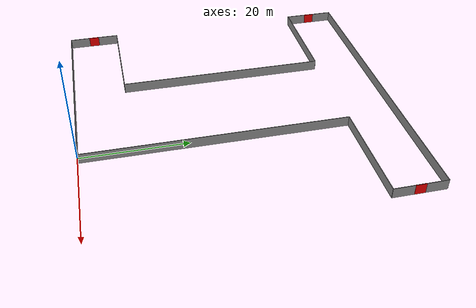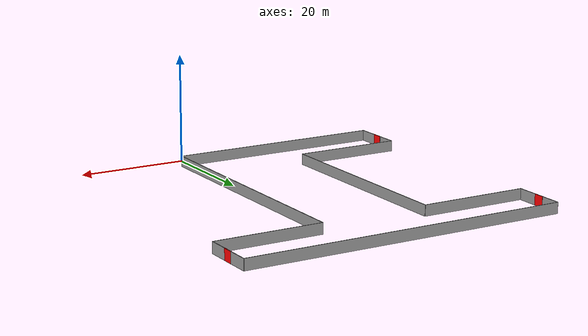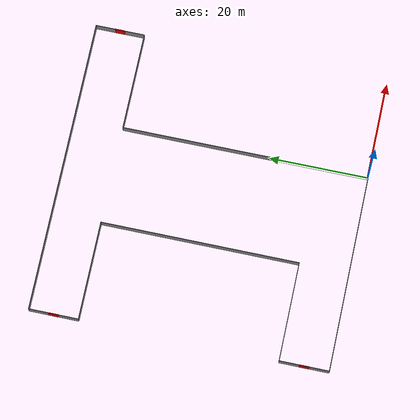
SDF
<?xml version='1.0'?>
<sdf version='1.6'>
  <model name='basic'>
    <pose frame=''>0 0 0 0 0 0</pose>
    <static>1</static>

    <link name='Wall_1'>
      <collision name='Wall_1_Collision'>
        <geometry>
          <box>
            <size>40 0.1 2</size>
          </box>
        </geometry>
        <pose frame=''>0 0 0 0 0 0</pose>
      </collision>
      <visual name='Wall_1_Visual'>
        <pose frame=''>0 0 0 0 0 0</pose>
        <geometry>
          <box>
            <size>40 0.1 2</size>
          </box>
        </geometry>
        <material>
          <script>
            <uri>file://media/materials/scripts/gazebo.material</uri>
            <name>Gazebo/Grey</name>
          </script>
          <ambient>1 1 1 1</ambient>
        </material>
        <meta>
          <layer>0</layer>
        </meta>
      </visual>
      <pose frame=''>-20 0 0 0 0 0</pose>
    </link>

    <link name='Wall_2'>
      <collision name='Wall_2_Collision'>
        <geometry>
          <box>
            <size>0.1 50 2</size>
          </box>
        </geometry>
        <pose frame=''>0 0 0 0 0 0</pose>
      </collision>
      <visual name='Wall_2_Visual'>
        <pose frame=''>0 0 0 0 0 0</pose>
        <geometry>
          <box>
            <size>0.1 50 2</size>
          </box>
        </geometry>
        <material>
          <script>
            <uri>file://media/materials/scripts/gazebo.material</uri>
            <name>Gazebo/Grey</name>
          </script>
          <ambient>1 1 1 1</ambient>
        </material>
        <meta>
          <layer>0</layer>
        </meta>
      </visual>
      <pose frame=''>0 25 0 0 0 0</pose>
    </link>

    <link name='Wall_3'>
      <collision name='Wall_3_Collision'>
        <geometry>
          <box>
            <size>20 0.1 2</size>
          </box>
        </geometry>
        <pose frame=''>0 0 0 0 0 0</pose>
      </collision>
      <visual name='Wall_3_Visual'>
        <pose frame=''>0 0 0 0 0 0</pose>
        <geometry>
          <box>
            <size>20 0.1 2</size>
          </box>
        </geometry>
        <material>
          <script>
            <uri>file://media/materials/scripts/gazebo.material</uri>
            <name>Gazebo/Grey</name>
          </script>
          <ambient>1 1 1 1</ambient>
        </material>
        <meta>
          <layer>0</layer>
        </meta>
      </visual>
      <pose frame=''>10 50 0 0 0 0</pose>
    </link>

    <link name='Wall_4'>
      <collision name='Wall_4_Collision'>
        <geometry>
          <box>
            <size>0.1 10 2</size>
          </box>
        </geometry>
        <pose frame=''>0 0 0 0 0 0</pose>
      </collision>
      <visual name='Wall_4_Visual'>
        <pose frame=''>0 0 0 0 0 0</pose>
        <geometry>
          <box>
            <size>0.1 10 2</size>
          </box>
        </geometry>
        <material>
          <script>
            <uri>file://media/materials/scripts/gazebo.material</uri>
            <name>Gazebo/Grey</name>
          </script>
          <ambient>1 1 1 1</ambient>
        </material>
        <meta>
          <layer>0</layer>
        </meta>
      </visual>
      <pose frame=''>20 55 0 0 0 0</pose>
    </link>

    <link name='Wall_5'>
      <collision name='Wall_5_Collision'>
        <geometry>
          <box>
            <size>60 0.1 2</size>
          </box>
        </geometry>
        <pose frame=''>0 0 0 0 0 0</pose>
      </collision>
      <visual name='Wall_5_Visual'>
        <pose frame=''>0 0 0 0 0 0</pose>
        <geometry>
          <box>
            <size>60 0.1 2</size>
          </box>
        </geometry>
        <material>
          <script>
            <uri>file://media/materials/scripts/gazebo.material</uri>
            <name>Gazebo/Grey</name>
          </script>
          <ambient>1 1 1 1</ambient>
        </material>
        <meta>
          <layer>0</layer>
        </meta>
      </visual>
      <pose frame=''>-10 60 0 0 0 0</pose>
    </link>

    <link name='Wall_6'>
      <collision name='Wall_6_Collision'>
        <geometry>
          <box>
            <size>0.1 10 2</size>
          </box>
        </geometry>
        <pose frame=''>0 0 0 0 0 0</pose>
      </collision>
      <visual name='Wall_6_Visual'>
        <pose frame=''>0 0 0 0 0 0</pose>
        <geometry>
          <box>
            <size>0.1 10 2</size>
          </box>
        </geometry>
        <material>
          <script>
            <uri>file://media/materials/scripts/gazebo.material</uri>
            <name>Gazebo/Grey</name>
          </script>
          <ambient>1 1 1 1</ambient>
        </material>
        <meta>
          <layer>0</layer>
        </meta>
      </visual>
      <pose frame=''>-40 55 0 0 0 0</pose>
    </link>

    <link name='Wall_7'>
      <collision name='Wall_7_Collision'>
        <geometry>
          <box>
            <size>20 0.1 2</size>
          </box>
        </geometry>
        <pose frame=''>0 0 0 0 0 0</pose>
      </collision>
      <visual name='Wall_7_Visual'>
        <pose frame=''>0 0 0 0 0 0</pose>
        <geometry>
          <box>
            <size>20 0.1 2</size>
          </box>
        </geometry>
        <material>
          <script>
            <uri>file://media/materials/scripts/gazebo.material</uri>
            <name>Gazebo/Grey</name>
          </script>
          <ambient>1 1 1 1</ambient>
        </material>
        <meta>
          <layer>0</layer>
        </meta>
      </visual>
      <pose frame=''>-30 50 0 0 0 0</pose>
    </link>

    <link name='Wall_8'>
      <collision name='Wall_8_Collision'>
        <geometry>
          <box>
            <size>0.1 40 2</size>
          </box>
        </geometry>
        <pose frame=''>0 0 0 0 0 0</pose>
      </collision>
      <visual name='Wall_8_Visual'>
        <pose frame=''>0 0 0 0 0 0</pose>
        <geometry>
          <box>
            <size>0.1 40 2</size>
          </box>
        </geometry>
        <material>
          <script>
            <uri>file://media/materials/scripts/gazebo.material</uri>
            <name>Gazebo/Grey</name>
          </script>
          <ambient>1 1 1 1</ambient>
        </material>
        <meta>
          <layer>0</layer>
        </meta>
      </visual>
      <pose frame=''>-20 30 0 0 0 0</pose>
    </link>

    <link name='Wall_9'>
      <collision name='Wall_9_Collision'>
        <geometry>
          <box>
            <size>20 0.1 2</size>
          </box>
        </geometry>
        <pose frame=''>0 0 0 0 0 0</pose>
      </collision>
      <visual name='Wall_9_Visual'>
        <pose frame=''>0 0 0 0 0 0</pose>
        <geometry>
          <box>
            <size>20 0.1 2</size>
          </box>
        </geometry>
        <material>
          <script>
            <uri>file://media/materials/scripts/gazebo.material</uri>
            <name>Gazebo/Grey</name>
          </script>
          <ambient>1 1 1 1</ambient>
        </material>
        <meta>
          <layer>0</layer>
        </meta>
      </visual>
      <pose frame=''>-30 10 0 0 0 0</pose>
    </link>

    <link name='Wall_10'>
      <collision name='Wall_10_Collision'>
        <geometry>
          <box>
            <size>0.1 10 2</size>
          </box>
        </geometry>
        <pose frame=''>0 0 0 0 0 0</pose>
      </collision>
      <visual name='Wall_10_Visual'>
        <pose frame=''>0 0 0 0 0 0</pose>
        <geometry>
          <box>
            <size>0.1 10 2</size>
          </box>
        </geometry>
        <material>
          <script>
            <uri>file://media/materials/scripts/gazebo.material</uri>
            <name>Gazebo/Grey</name>
          </script>
          <ambient>1 1 1 1</ambient>
        </material>
        <meta>
          <layer>0</layer>
        </meta>
      </visual>
      <pose frame=''>-40 5 0 0 0 0</pose>
    </link>

    <link name='Door_1'>
      <collision name='Door_1_Collision'>
        <geometry>
          <box>
            <size>0.15 2 2</size>
          </box>
        </geometry>
        <pose frame=''>0 0 0 0 0 0</pose>
      </collision>
      <visual name='Door_1_Visual'>
        <pose frame=''>0 0 0 0 0 0</pose>
        <geometry>
          <box>
            <size>0.15 2 2</size>
          </box>
        </geometry>
        <material>
          <script>
            <uri>file://media/materials/scripts/gazebo.material</uri>
            <name>Gazebo/Grey</name>
          </script>
          <ambient>1 0 0 1</ambient>
        </material>
        <meta>
          <layer>0</layer>
        </meta>
      </visual>
      <pose frame=''>-40 5 0 0 0 0</pose>
    </link>

    <link name='Door_2'>
      <collision name='Door_2_Collision'>
        <geometry>
          <box>
            <size>0.15 2 2</size>
          </box>
        </geometry>
        <pose frame=''>0 0 0 0 0 0</pose>
      </collision>
      <visual name='Door_2_Visual'>
        <pose frame=''>0 0 0 0 0 0</pose>
        <geometry>
          <box>
            <size>0.15 2 2</size>
          </box>
        </geometry>
        <material>
          <script>
            <uri>file://media/materials/scripts/gazebo.material</uri>
            <name>Gazebo/Grey</name>
          </script>
          <ambient>1 0 0 1</ambient>
        </material>
        <meta>
          <layer>0</layer>
        </meta>
      </visual>
      <pose frame=''>-40 55 0 0 0 0</pose>
    </link>

    <link name='Door_3'>
      <collision name='Door_3_Collision'>
        <geometry>
          <box>
            <size>0.15 2 2</size>
          </box>
        </geometry>
        <pose frame=''>0 0 0 0 0 0</pose>
      </collision>
      <visual name='Door_3_Visual'>
        <pose frame=''>0 0 0 0 0 0</pose>
        <geometry>
          <box>
            <size>0.15 2 2</size>
          </box>
        </geometry>
        <material>
          <script>
            <uri>file://media/materials/scripts/gazebo.material</uri>
            <name>Gazebo/Grey</name>
          </script>
          <ambient>1 0 0 1</ambient>
        </material>
        <meta>
          <layer>0</layer>
        </meta>
      </visual>
      <pose frame=''>20 55 0 0 0 0</pose>
    </link>

  </model>
</sdf>
